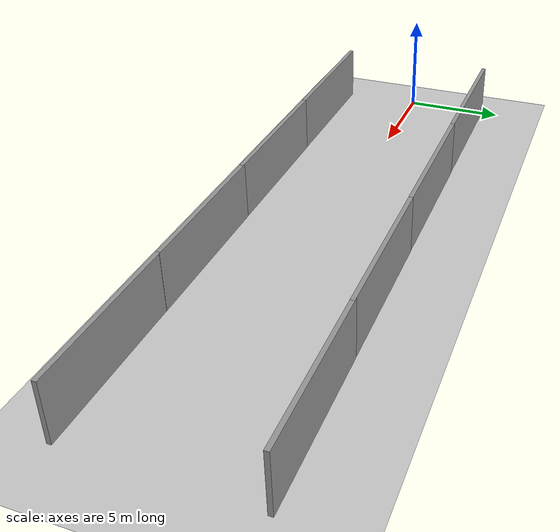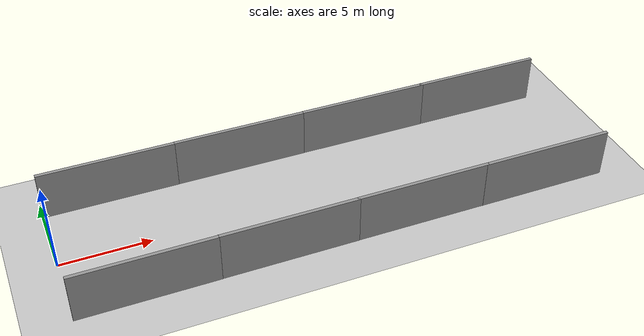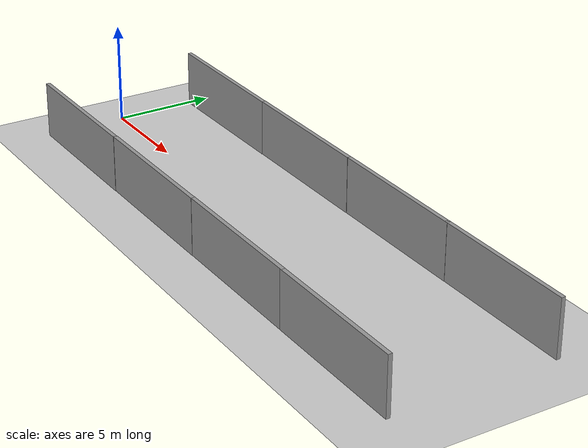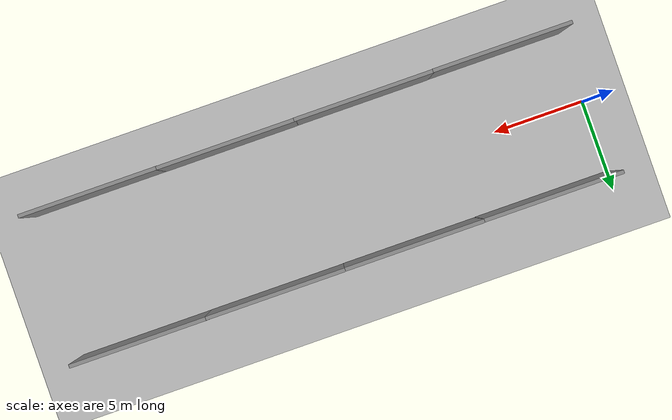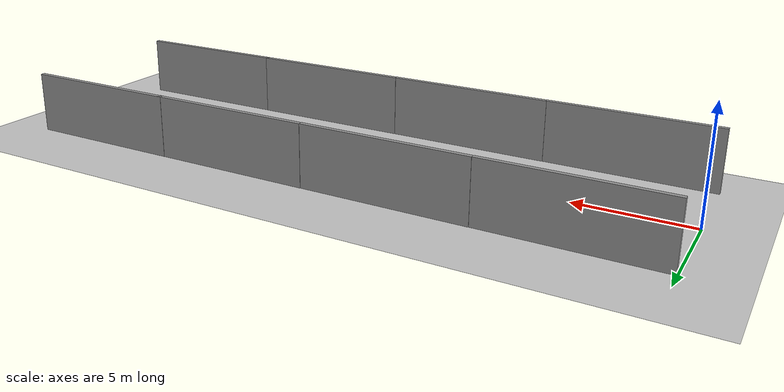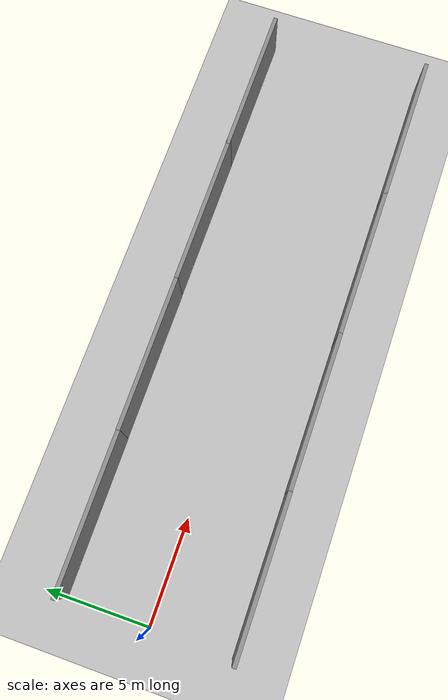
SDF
<sdf version="1.7">
 <world name="default">
  <light name="sun" type="directional">
   <pose>0 0 10 0 -0 0</pose>
   <diffuse>0.8 0.8 0.8 1</diffuse>
   <specular>0.2 0.2 0.2 1</specular>
   <attenuation>
    <range>1000</range>
    <constant>0.9</constant>
    <linear>0.01</linear>
    <quadratic>0.001</quadratic>
   </attenuation>
   <direction>-0.5 0.1 -0.9</direction>
   <spot><inner_angle>0</inner_angle><outer_angle>0</outer_angle><falloff>0</falloff></spot>
  </light>
  <model name="ground_plane">
   <static>1</static>
   <link name="link">
    <collision name="collision">
     <geometry><plane><normal>0 0 1</normal><size>100 100</size></plane></geometry>
     <surface>
      <contact><collide_bitmask>65535</collide_bitmask></contact>
      <friction><ode><mu>100</mu><mu2>50</mu2></ode></friction>
     </surface>
    </collision>
    <visual name="visual">
     <cast_shadows>0</cast_shadows>
     <geometry><plane><normal>0 0 1</normal><size>100 100</size></plane></geometry>
     <material>
      <script><uri>file://media/materials/scripts/gazebo.material</uri><name>Gazebo/Grey</name></script>
     </material>
    </visual>
   </link>
  </model>
  <gravity>0 0 -9.8</gravity>
  <magnetic_field>6e-06 2.3e-05 -4.2e-05</magnetic_field>
  <atmosphere type="adiabatic"/>
  <physics type="ode">
   <max_step_size>0.001</max_step_size>
   <real_time_factor>1</real_time_factor>
   <real_time_update_rate>1000</real_time_update_rate>
  </physics>
  <scene><ambient>0.4 0.4 0.4 1</ambient><background>0.7 0.7 0.7 1</background><shadows>1</shadows></scene>
  <spherical_coordinates>
   <surface_model>EARTH_WGS84</surface_model>
   <latitude_deg>0</latitude_deg>
   <longitude_deg>0</longitude_deg>
   <elevation>0</elevation>
   <heading_deg>0</heading_deg>
  </spherical_coordinates>
  <model name="grey_wall">
   <static>1</static>
   <link name="link">
    <pose>0 0 1.4 0 -0 0</pose>
    <collision name="collision"><geometry><box><size>7.5 0.2 2.8</size></box></geometry></collision>
    <visual name="visual">
     <cast_shadows>0</cast_shadows>
     <geometry><box><size>7.5 0.2 2.8</size></box></geometry>
     <material>
      <script>
       <uri>model://grey_wall/materials/scripts</uri>
       <uri>model://grey_wall/materials/textures</uri>
       <name>vrc/grey_wall</name>
      </script>
     </material>
    </visual>
   </link>
   <pose>3.78506 4.04678 0 0 -0 0</pose>
  </model>
  <model name="grey_wall_clone">
   <static>1</static>
   <link name="link">
    <pose>0 0 1.4 0 -0 0</pose>
    <collision name="collision"><geometry><box><size>7.5 0.2 2.8</size></box></geometry></collision>
    <visual name="visual">
     <cast_shadows>0</cast_shadows>
     <geometry><box><size>7.5 0.2 2.8</size></box></geometry>
     <material>
      <script>
       <uri>model://grey_wall/materials/scripts</uri>
       <uri>model://grey_wall/materials/textures</uri>
       <name>vrc/grey_wall</name>
      </script>
     </material>
    </visual>
   </link>
   <pose>3.75008 -3.97126 0 0 -0 0</pose>
  </model>
  <model name="grey_wall_clone_0">
   <static>1</static>
   <link name="link">
    <pose>0 0 1.4 0 -0 0</pose>
    <collision name="collision"><geometry><box><size>7.5 0.2 2.8</size></box></geometry></collision>
    <visual name="visual">
     <cast_shadows>0</cast_shadows>
     <geometry><box><size>7.5 0.2 2.8</size></box></geometry>
     <material>
      <script>
       <uri>model://grey_wall/materials/scripts</uri>
       <uri>model://grey_wall/materials/textures</uri>
       <name>vrc/grey_wall</name>
      </script>
     </material>
    </visual>
   </link>
   <pose>11.271 4.06061 0 0 -0 0</pose>
  </model>
  <model name="grey_wall_clone_1">
   <static>1</static>
   <link name="link">
    <pose>0 0 1.4 0 -0 0</pose>
    <collision name="collision"><geometry><box><size>7.5 0.2 2.8</size></box></geometry></collision>
    <visual name="visual">
     <cast_shadows>0</cast_shadows>
     <geometry><box><size>7.5 0.2 2.8</size></box></geometry>
     <material>
      <script>
       <uri>model://grey_wall/materials/scripts</uri>
       <uri>model://grey_wall/materials/textures</uri>
       <name>vrc/grey_wall</name>
      </script>
     </material>
    </visual>
   </link>
   <pose>18.7615 4.07127 0 0 -0 0</pose>
  </model>
  <model name="grey_wall_clone_2">
   <static>1</static>
   <link name="link">
    <pose>0 0 1.4 0 -0 0</pose>
    <collision name="collision"><geometry><box><size>7.5 0.2 2.8</size></box></geometry></collision>
    <visual name="visual">
     <cast_shadows>0</cast_shadows>
     <geometry><box><size>7.5 0.2 2.8</size></box></geometry>
     <material>
      <script>
       <uri>model://grey_wall/materials/scripts</uri>
       <uri>model://grey_wall/materials/textures</uri>
       <name>vrc/grey_wall</name>
      </script>
     </material>
    </visual>
   </link>
   <pose>11.2157 -3.95683 0 0 -0 0</pose>
  </model>
  <model name="grey_wall_clone_3">
   <static>1</static>
   <link name="link">
    <pose>0 0 1.4 0 -0 0</pose>
    <collision name="collision"><geometry><box><size>7.5 0.2 2.8</size></box></geometry></collision>
    <visual name="visual">
     <cast_shadows>0</cast_shadows>
     <geometry><box><size>7.5 0.2 2.8</size></box></geometry>
     <material>
      <script>
       <uri>model://grey_wall/materials/scripts</uri>
       <uri>model://grey_wall/materials/textures</uri>
       <name>vrc/grey_wall</name>
      </script>
     </material>
    </visual>
   </link>
   <pose>18.6124 -3.94689 0 0 -0 0</pose>
  </model>
  <model name="grey_wall_clone_4">
   <static>1</static>
   <link name="link">
    <pose>0 0 1.4 0 -0 0</pose>
    <collision name="collision"><geometry><box><size>7.5 0.2 2.8</size></box></geometry></collision>
    <visual name="visual">
     <cast_shadows>0</cast_shadows>
     <geometry><box><size>7.5 0.2 2.8</size></box></geometry>
     <material>
      <script>
       <uri>model://grey_wall/materials/scripts</uri>
       <uri>model://grey_wall/materials/textures</uri>
       <name>vrc/grey_wall</name>
      </script>
     </material>
    </visual>
   </link>
   <pose>26.0867 4.07872 0 0 -0 0</pose>
  </model>
  <model name="grey_wall_clone_5">
   <static>1</static>
   <link name="link">
    <pose>0 0 1.4 0 -0 0</pose>
    <collision name="collision"><geometry><box><size>7.5 0.2 2.8</size></box></geometry></collision>
    <visual name="visual">
     <cast_shadows>0</cast_shadows>
     <geometry><box><size>7.5 0.2 2.8</size></box></geometry>
     <material>
      <script>
       <uri>model://grey_wall/materials/scripts</uri>
       <uri>model://grey_wall/materials/textures</uri>
       <name>vrc/grey_wall</name>
      </script>
     </material>
    </visual>
   </link>
   <pose>26.0167 -3.95252 0 0 -0 0</pose>
  </model>
 </world>
</sdf>
